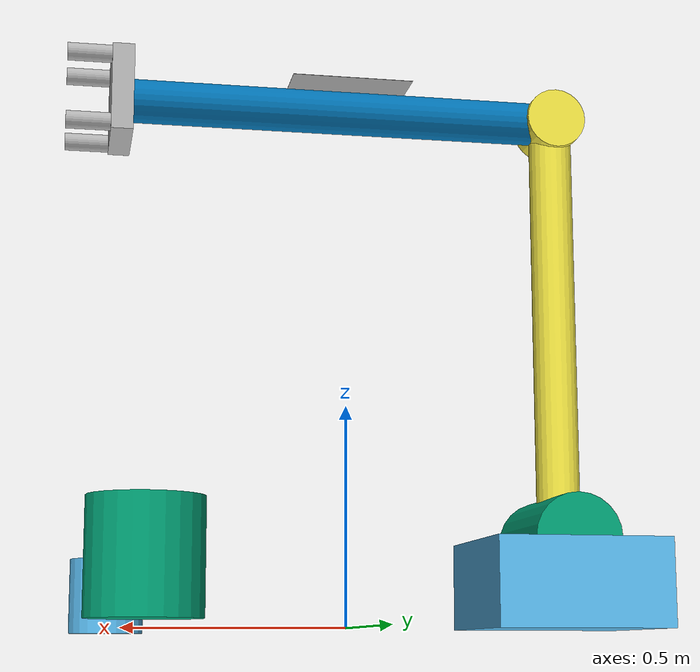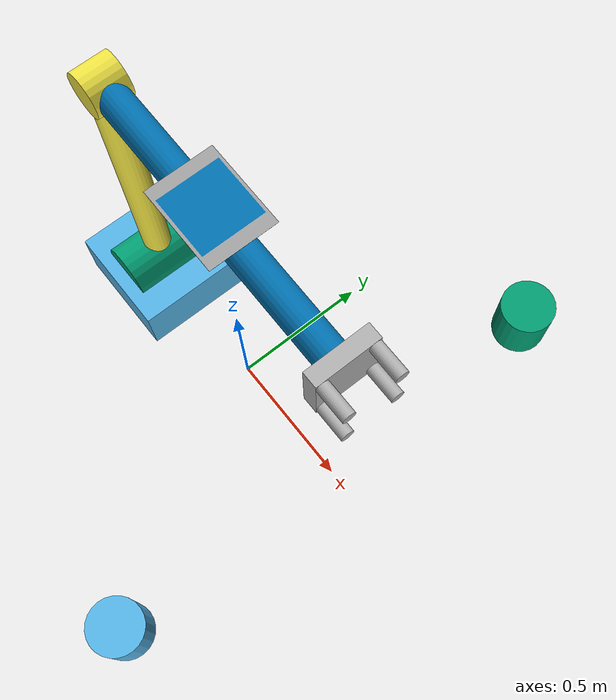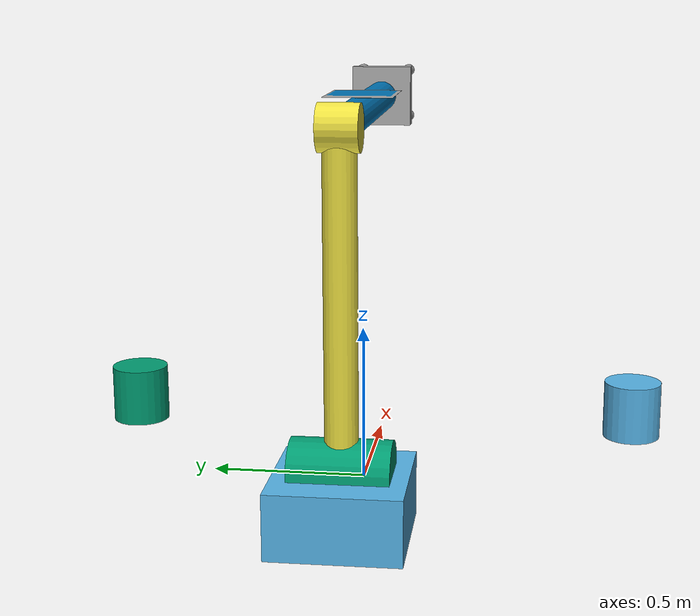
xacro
<robot name="test_scene" xmlns:xacro="http://ros.org/wiki/xacro">

<xacro:arg name="load_payloads" default="false"/>

<link name="world"/>

<link name="base_link">
  <visual name="visual">
  <origin xyz="0 0 0.1"/>
  <geometry><box size="0.4 0.4 0.2"/></geometry>
  </visual>
  <collision name="collision">
  <origin xyz="0 0 0.1"/>
  <geometry><box size="0.4 0.4 0.2"/></geometry>
  </collision>
</link>

<link name="link_1">
  <visual name="visual">
  <origin rpy="${radians(90)} 0 0" xyz="0 0 0"/>
  <geometry><cylinder length="0.3" radius="0.1"/></geometry>
  </visual>
  <collision name="collision">
  <origin rpy="${radians(90)} 0 0" xyz="0 0 0"/>
  <geometry><cylinder length="0.3" radius="0.1"/></geometry>
  </collision>
</link>

<link name="link_2">
  <visual name="visual">
  <origin rpy="0 0 0" xyz="0 0 0.5"/>
  <geometry><cylinder length="1" radius="0.05"/></geometry>
  </visual>
  <collision name="collision">
  <origin rpy="0 0 0" xyz="0 0 0.5"/>
  <geometry><cylinder length="1" radius="0.05"/></geometry>
  </collision>
  <visual name="visual">
  <origin rpy="${radians(90)} 0 0" xyz="0 0 1"/>
  <geometry><cylinder length="0.12" radius="0.07"/></geometry>
  </visual>
  <collision name="collision">
  <origin rpy="${radians(90)} 0 0" xyz="0 0 1"/>
  <geometry><cylinder length="0.12" radius="0.07"/></geometry>
  </collision>
</link>

<link name="link_3">
  <visual name="visual">
  <origin rpy="0 ${radians(90)} 0" xyz="0.5 0 0"/>
  <geometry><cylinder length="1" radius="0.05"/></geometry>
  </visual>
  <visual name="visual2">
  <origin rpy="0 0 ${radians(-90)}" xyz="0.5 0 0.05"/>
  <geometry><mesh filename="package://industrial_payload_manager/test/meshes/markers/artag_1234.dae"/></geometry>
  </visual>
  <collision name="collision">
  <origin rpy="0 ${radians(90)} 0" xyz="0.5 0 0"/>
  <geometry><cylinder length="1" radius="0.05"/></geometry>
  </collision>
</link>

<link name="link_4"/>

<link name="tool0"/>

<link name="vacuum_gripper">
  <visual name="visual">
  <origin xyz="0.025 0 0"/>
  <geometry><box size="0.05 0.2 0.2"/></geometry>
  </visual>
  <visual name="visual2">
  <origin xyz="0.1 -0.08 -0.08" rpy="0 ${radians(90)} 0"/>
  <geometry><cylinder length="0.1" radius="0.02"/></geometry>
  </visual>
  <visual name="visual3">
  <origin xyz="0.1 0.08 -0.08" rpy="0 ${radians(90)} 0"/>
  <geometry><cylinder length="0.1" radius="0.02"/></geometry>
  </visual>
  <visual name="visual4">
  <origin xyz="0.1 -0.08 0.08" rpy="0 ${radians(90)} 0"/>
  <geometry><cylinder length="0.1" radius="0.02"/></geometry>
  </visual>
  <visual name="visual5">
  <origin xyz="0.1 0.08 0.08" rpy="0 ${radians(90)} 0"/>
  <geometry><cylinder length="0.1" radius="0.02"/></geometry>
  </visual>
  <collision name="collision">
  <origin xyz="0 0 0"/>
  <geometry><box size="0.15 0.2 0.2"/></geometry>
  </collision>
</link>

<link name="vacuum_gripper_tool"/>

<joint name="world_to_base_link" type="fixed">
  <parent link="world"/>
  <child link="base_link"/>
  <origin xyz="-0.5 0 0"/>
</joint>

<joint name="joint_1" type="revolute">
  <parent link="base_link"/>
  <child link="link_1"/>
  <origin xyz="0 0 0.2"/>
  <axis xyz="0 0 1"/>
  <limit effort="0" lower="${radians(-180)}" upper="${radians(180)}" velocity="${radians(180)}"/>
</joint>

<joint name="joint_2" type="revolute">
  <parent link="link_1"/>
  <child link="link_2"/>
  <origin xyz="0 0 0"/>
  <axis xyz="0 1 0"/>
  <limit effort="0" lower="${radians(-90)}" upper="${radians(90)}" velocity="${radians(180)}"/>
</joint>

<joint name="joint_3" type="revolute">
  <parent link="link_2"/>
  <child link="link_3"/>
  <origin xyz="0 0 1"/>
  <axis xyz="0 1 0"/>
  <limit effort="0" lower="${radians(-90)}" upper="${radians(90)}" velocity="${radians(180)}"/>
</joint>

<joint name="joint_4" type="revolute">
  <parent link="link_3"/>
  <child link="link_4"/>
  <origin xyz="0 0 0"/>
  <axis xyz="1 0 0"/>
  <limit effort="0" lower="${radians(-360)}" upper="${radians(360)}" velocity="${radians(180)}"/>
</joint>

<joint name="link_4_to_tool0" type="fixed">
  <parent link="link_4"/>
  <child link="tool0"/>
  <origin xyz="1 0 0"/>
</joint>

<joint name="tool0_to_vacuum_gripper" type="fixed">
  <parent link="tool0"/>
  <child link="vacuum_gripper"/>
  <origin xyz="0 0 0"/>
</joint>

<joint name="vacuum_gripper_to_vacuum_gripper_tool" type="fixed">
  <parent link="vacuum_gripper"/>
  <child link="vacuum_gripper_tool"/>
  <origin xyz="0.15 0 0" rpy="0 ${radians(90)} 0"/>
</joint>

<link name="fixture1">
  <visual name="visual">
  <origin xyz="0 0 -0.1"/>
  <geometry><cylinder length="0.2" radius="0.1"/></geometry>
  </visual>
</link>

<joint name="world_to_fixture1" type="fixed">
  <parent link="world"/>
  <child link="fixture1"/>
  <origin xyz="0.5 -0.9 0.2"/>
</joint>

<link name="fixture2">
  <visual name="visual">
  <origin xyz="0 0 -0.1"/>
  <geometry><cylinder length="0.2" radius="0.1"/></geometry>
  </visual>
</link>

<joint name="world_to_fixture2" type="fixed">
  <parent link="world"/>
  <child link="fixture2"/>
  <origin xyz="0.5 0.9 0.2"/>
</joint>

<xacro:if value="$(arg load_payloads)">
  <xacro:include filename="$(find industrial_payload_manager)/test/urdf/payload1_payload.xacro"/>
  <xacro:include filename="$(find industrial_payload_manager)/test/urdf/payload2_payload.xacro"/>
  <xacro:include filename="$(find industrial_payload_manager)/test/urdf/payload3_payload.xacro"/>
  <xacro:include filename="$(find industrial_payload_manager)/test/urdf/fixture1_payload1_target.xacro"/>
  <xacro:include filename="$(find industrial_payload_manager)/test/urdf/fixture2_payload2_target.xacro"/>
  <xacro:include filename="$(find industrial_payload_manager)/test/urdf/link_3_marker.xacro"/>
</xacro:if>

</robot>
